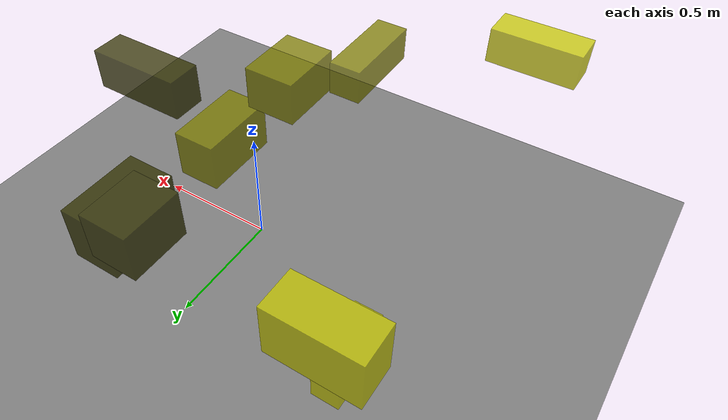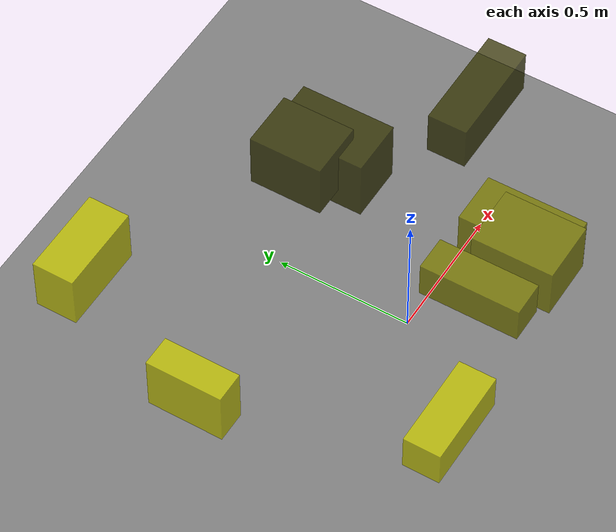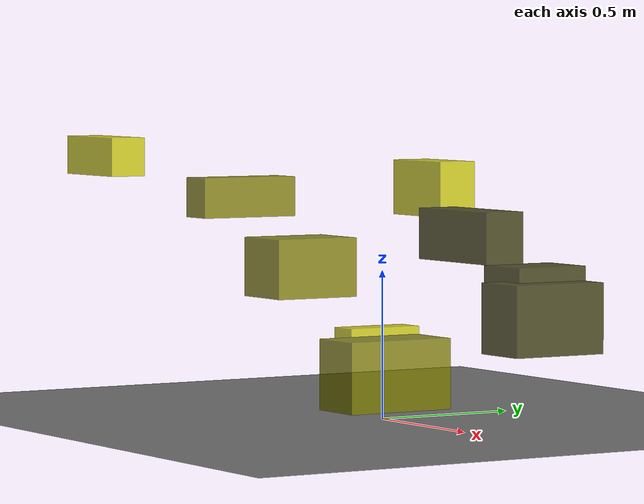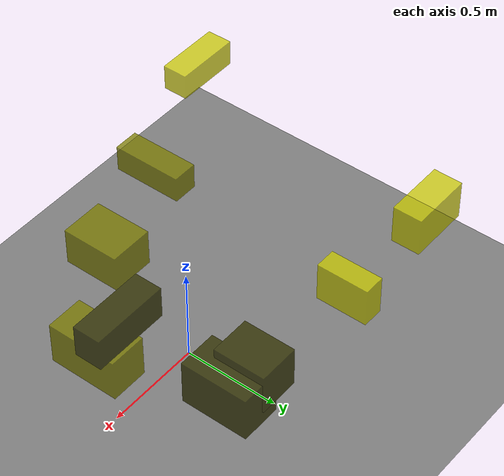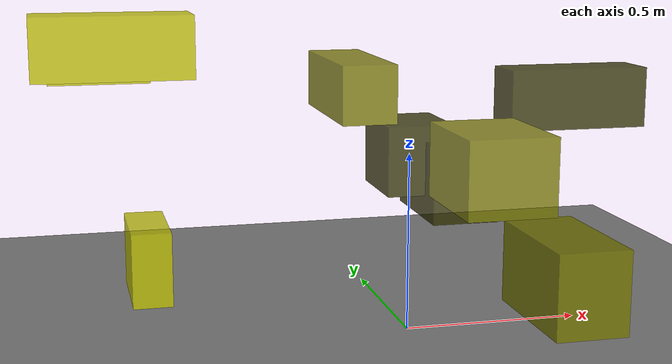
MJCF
<?xml version="1.0"?>
<mujoco model="obstacle_scene">
  <compiler angle="radian" coordinate="local"/>
  <option timestep="0.001" gravity="0 0 -9.81"/>

  <asset>
    <material name="obstacle_mat" rgba="0.8 0.8 0.0 0.8"/>
    <material name="ground_mat" rgba="0.5 0.5 0.5 1"/>
  </asset>

  <worldbody>
    <!-- Ground plane -->
    <geom name="ground" type="plane" size="3 3 0.1" material="ground_mat"/>

    <!-- Obstacles -->
    <body name="obstacle_0" pos="0.158367 0.510168 0.399868">
      <geom name="obs_0" type="box" size="0.106911 0.135495 0.107950" rgba="0.2 0.2 0.0 0.8"/>
    </body>
    <body name="obstacle_1" pos="0.094430 -0.377689 0.530206">
      <geom name="obs_1" type="box" size="0.112097 0.146947 0.096792" rgba="0.5 0.5 0.0 0.8"/>
    </body>
    <body name="obstacle_2" pos="-0.796802 0.723674 0.730692">
      <geom name="obs_2" type="box" size="0.156692 0.073214 0.099645" rgba="0.8 0.8 0.0 0.8"/>
    </body>
    <body name="obstacle_3" pos="0.480885 0.033903 0.639128">
      <geom name="obs_3" type="box" size="0.198406 0.070694 0.083830" rgba="0.2 0.2 0.0 0.8"/>
    </body>
    <body name="obstacle_4" pos="0.368261 -0.221957 0.191490">
      <geom name="obs_4" type="box" size="0.099830 0.188078 0.115395" rgba="0.5 0.5 0.0 0.8"/>
    </body>
    <body name="obstacle_5" pos="-0.682808 0.408371 0.136628">
      <geom name="obs_5" type="box" size="0.057612 0.142686 0.109853" rgba="0.8 0.8 0.0 0.8"/>
    </body>
    <body name="obstacle_6" pos="0.274375 0.462755 0.338177">
      <geom name="obs_6" type="box" size="0.104955 0.175596 0.120229" rgba="0.2 0.2 0.0 0.8"/>
    </body>
    <body name="obstacle_7" pos="-0.266831 -0.392561 0.746252">
      <geom name="obs_7" type="box" size="0.062203 0.174148 0.066292" rgba="0.5 0.5 0.0 0.8"/>
    </body>
    <body name="obstacle_8" pos="-0.827675 -0.606747 0.870882">
      <geom name="obs_8" type="box" size="0.164426 0.062820 0.065635" rgba="0.8 0.8 0.0 0.8"/>
    </body>
  </worldbody>
</mujoco>
